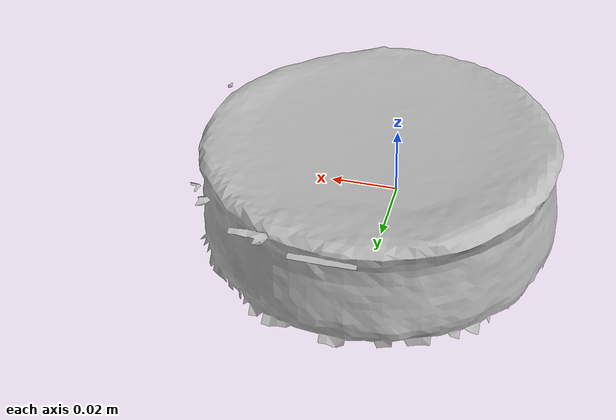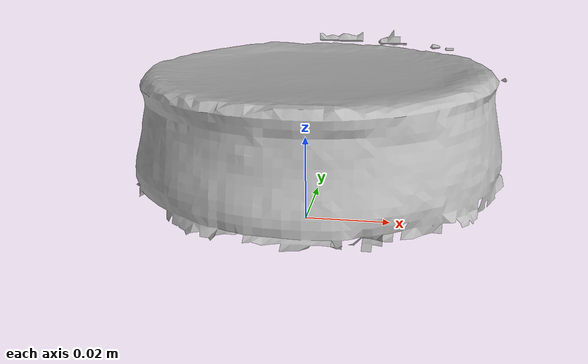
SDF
<?xml version="1.0" ?>
<sdf version="1.4">
  <model name="007_tuna_fish_can">
    <pose>0 0 0  0 0 0</pose>
    <link name="body">
      <inertial>
        <!-- Volume:  2.2787217700e-04 -->
        <mass> 1.0 </mass>
        <!-- Center of mass:  5.1500000000e-05  1.5707600000e-02  1.2549640000e-02 -->
        <pose>  5.1500000000e-05  1.5707600000e-02  1.2549640000e-02 0 0 0 </pose>
        <!-- Inertia matrix -->
        <inertia>
          <ixx>  5.7180221217e-04 </ixx>
          <ixy>  3.9345821495e-06 </ixy>
          <ixz> -1.9671550336e-06 </ixz>
          <iyy>  5.7740581115e-04 </iyy>
          <iyz>  6.8843332286e-07 </iyz>
          <izz>  8.9578954038e-04 </izz>
        </inertia>
      </inertial>
      <visual name="visual">
        <geometry>
          <mesh>
            <uri>model://007_tuna_fish_can/nontextured.stl</uri>
          </mesh>
        </geometry>
      </visual>
      <collision name="collision">
        <geometry>
          <mesh>
            <uri>model://007_tuna_fish_can/nontextured.stl</uri>
          </mesh>
        </geometry>
        <max_contacts>10</max_contacts>
        <surface>
          <friction>
            <ode>
              <mu>0.8</mu>
              <mu2>0.8</mu2>
              <slip1>0</slip1>
              <slip2>0</slip2>
            </ode>
            <torsional>
              <ode/>
            </torsional>
          </friction>
          <contact>
            <ode>
              <kp>1000000.0</kp>
              <kd>1.0</kd>
              <max_vel>0.0</max_vel>
            </ode>
          </contact>
        </surface>
      </collision>
    </link>
  </model>
</sdf>
